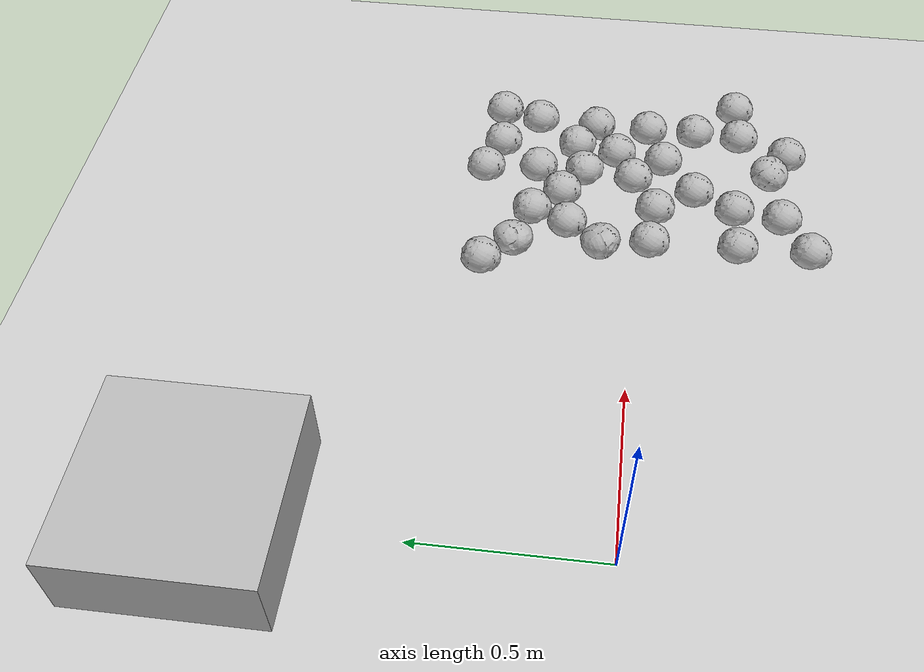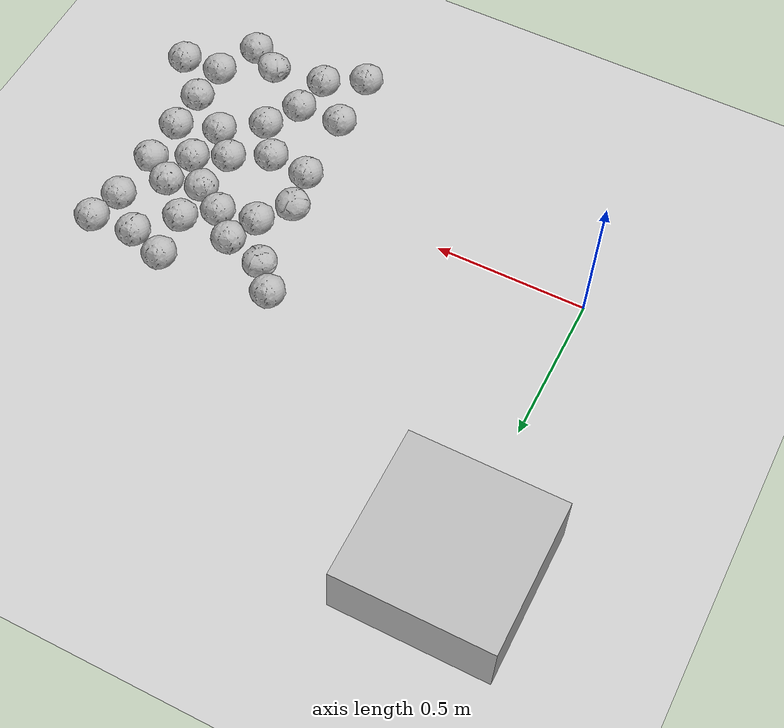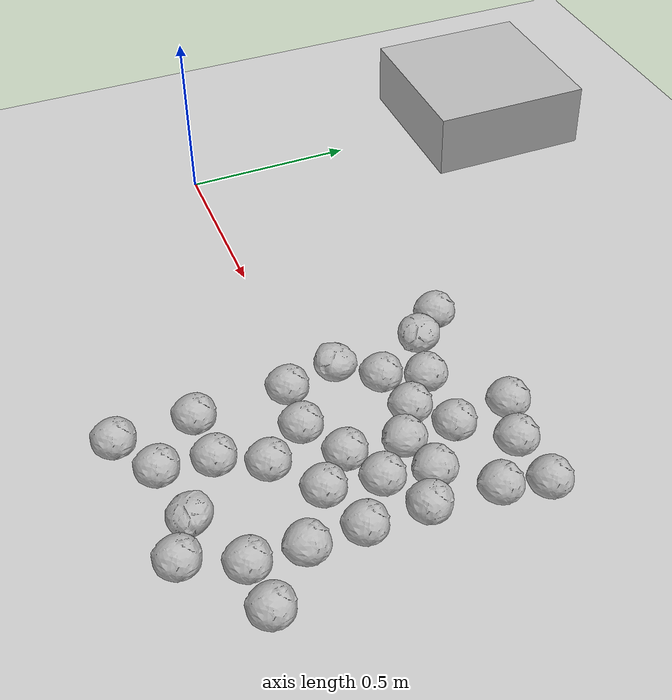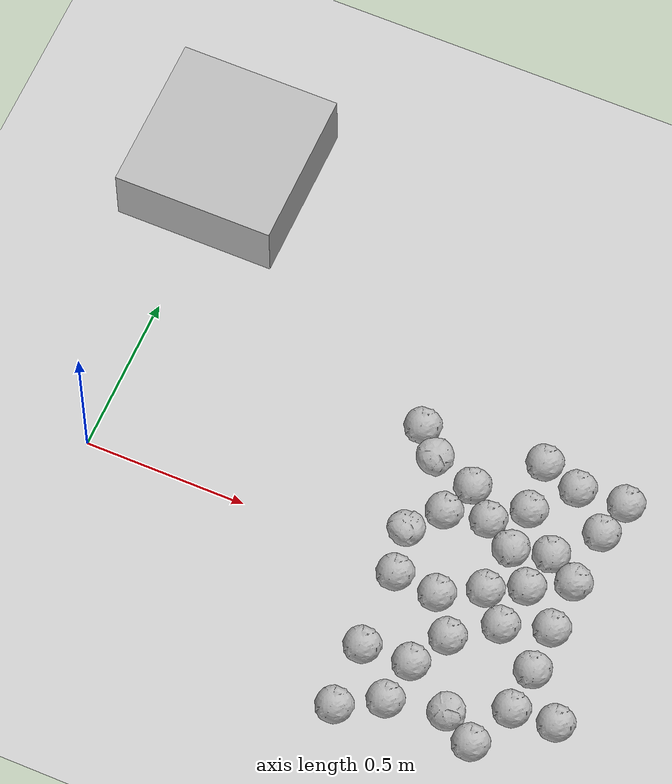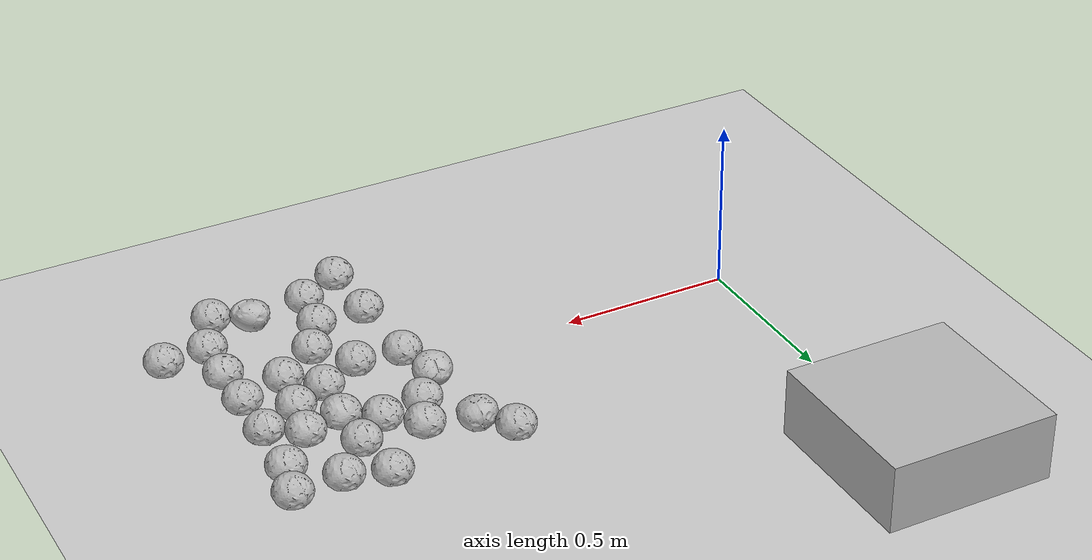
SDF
<sdf version="1.6">
 <world name="default">
  <model name="ground_plane">
   <static>1</static>
   <link name="link">
    <collision name="collision">
     <geometry><plane><normal>0 0 1</normal><size>100 100</size></plane></geometry>
     <surface>
      <contact><collide_bitmask>65535</collide_bitmask></contact>
      <friction><ode><mu>100</mu><mu2>50</mu2></ode></friction>
     </surface>
    </collision>
    <visual name="visual">
     <cast_shadows>0</cast_shadows>
     <geometry><plane><normal>0 0 1</normal><size>100 100</size></plane></geometry>
     <material>
      <script><uri>file://media/materials/scripts/gazebo.material</uri><name>Gazebo/Grey</name></script>
     </material>
    </visual>
   </link>
  </model>
  <light name="sun" type="directional">
   <pose>0 0 10 0 -0 0</pose>
   <diffuse>0.8 0.8 0.8 1</diffuse>
   <specular>0.2 0.2 0.2 1</specular>
   <attenuation>
    <range>1000</range>
    <constant>0.9</constant>
    <linear>0.01</linear>
    <quadratic>0.001</quadratic>
   </attenuation>
   <direction>-0.5 0.1 -0.9</direction>
  </light>
  <model name="mytable">
   <link name="link">
    <inertial>
     <mass>1</mass>
     <inertia><ixx>0.083</ixx><ixy>0</ixy><ixz>0</ixz><iyy>0.083</iyy><iyz>0</iyz><izz>0.083</izz></inertia>
    </inertial>
    <collision name="collision"><geometry><box><size>0.5 0.5 0.2</size></box></geometry></collision>
    <visual name="visual"><geometry><box><size>0.5 0.5 0.2</size></box></geometry></visual>
   </link>
   <pose>0 1 0.1 0 -0 0</pose>
  </model>
  <gravity>0 0 -9.8</gravity>
  <magnetic_field>6e-06 2.3e-05 -4.2e-05</magnetic_field>
  <atmosphere type="adiabatic"/>
  <physics name="default_physics" default="0" type="ode">
   <max_step_size>0.001</max_step_size>
   <real_time_factor>1</real_time_factor>
   <real_time_update_rate>1000</real_time_update_rate>
  </physics>
  <scene><ambient>0.4 0.4 0.4 1</ambient><background>0.7 0.7 0.7 1</background><shadows>1</shadows></scene>
  <audio><device>default</device></audio>
  <spherical_coordinates>
   <surface_model>EARTH_WGS84</surface_model>
   <latitude_deg>0</latitude_deg>
   <longitude_deg>0</longitude_deg>
   <elevation>0</elevation>
   <heading_deg>0</heading_deg>
  </spherical_coordinates>
  <model name="cabbage_clone_0">
   <link name="link">
    <inertial>
     <mass>1.5</mass>
     <inertia>
      <ixx>0.0017004</ixx>
      <ixy>0</ixy>
      <ixz>0</ixz>
      <iyy>0.0019839</iyy>
      <iyz>0</iyz>
      <izz>0.0016659</izz>
     </inertia>
    </inertial>
    <collision name="collision">
     <geometry>
      <mesh><scale>0.001 0.001 0.001</scale><uri>model://cabbage/cabbage_single.dae</uri></mesh>
     </geometry>
     <surface>
      <friction><ode><mu>0.6</mu><mu2>0.6</mu2></ode></friction>
      <contact><ode><max_vel>0.1</max_vel><min_depth>0.0001</min_depth></ode></contact>
     </surface>
    </collision>
    <visual name="visual">
     <geometry>
      <mesh><scale>0.001 0.001 0.001</scale><uri>model://cabbage/cabbage_single.dae</uri></mesh>
     </geometry>
     <material><script><uri>model://cabbage/texture.material</uri><name>CabbageTexture</name></script></material>
    </visual>
   </link>
   <pose>1.52906 0.426175 0.051369 1.56997 0.009095 0.300624</pose>
  </model>
  <model name="cabbage_clone_1">
   <link name="link">
    <inertial>
     <mass>1.5</mass>
     <inertia>
      <ixx>0.0017004</ixx>
      <ixy>0</ixy>
      <ixz>0</ixz>
      <iyy>0.0019839</iyy>
      <iyz>0</iyz>
      <izz>0.0016659</izz>
     </inertia>
    </inertial>
    <collision name="collision">
     <geometry>
      <mesh><scale>0.001 0.001 0.001</scale><uri>model://cabbage/cabbage_single.dae</uri></mesh>
     </geometry>
     <surface>
      <friction><ode><mu>0.6</mu><mu2>0.6</mu2></ode></friction>
      <contact><ode><max_vel>0.1</max_vel><min_depth>0.0001</min_depth></ode></contact>
     </surface>
    </collision>
    <visual name="visual">
     <geometry>
      <mesh><scale>0.001 0.001 0.001</scale><uri>model://cabbage/cabbage_single.dae</uri></mesh>
     </geometry>
     <material><script><uri>model://cabbage/texture.material</uri><name>CabbageTexture</name></script></material>
    </visual>
   </link>
   <pose>1.49953 0.310142 0.051509 1.57619 0.008676 0.500936</pose>
  </model>
  <model name="cabbage_clone_2">
   <link name="link">
    <inertial>
     <mass>1.5</mass>
     <inertia>
      <ixx>0.0017004</ixx>
      <ixy>0</ixy>
      <ixz>0</ixz>
      <iyy>0.0019839</iyy>
      <iyz>0</iyz>
      <izz>0.0016659</izz>
     </inertia>
    </inertial>
    <collision name="collision">
     <geometry>
      <mesh><scale>0.001 0.001 0.001</scale><uri>model://cabbage/cabbage_single.dae</uri></mesh>
     </geometry>
     <surface>
      <friction><ode><mu>0.6</mu><mu2>0.6</mu2></ode></friction>
      <contact><ode><max_vel>0.1</max_vel><min_depth>0.0001</min_depth></ode></contact>
     </surface>
    </collision>
    <visual name="visual">
     <geometry>
      <mesh><scale>0.001 0.001 0.001</scale><uri>model://cabbage/cabbage_single.dae</uri></mesh>
     </geometry>
     <material><script><uri>model://cabbage/texture.material</uri><name>CabbageTexture</name></script></material>
    </visual>
   </link>
   <pose>1.39185 0.188371 0.051477 1.57111 0.008937 0.738338</pose>
  </model>
  <model name="cabbage_clone_3">
   <link name="link">
    <inertial>
     <mass>1.5</mass>
     <inertia>
      <ixx>0.0017004</ixx>
      <ixy>0</ixy>
      <ixz>0</ixz>
      <iyy>0.0019839</iyy>
      <iyz>0</iyz>
      <izz>0.0016659</izz>
     </inertia>
    </inertial>
    <collision name="collision">
     <geometry>
      <mesh><scale>0.001 0.001 0.001</scale><uri>model://cabbage/cabbage_single.dae</uri></mesh>
     </geometry>
     <surface>
      <friction><ode><mu>0.6</mu><mu2>0.6</mu2></ode></friction>
      <contact><ode><max_vel>0.1</max_vel><min_depth>0.0001</min_depth></ode></contact>
     </surface>
    </collision>
    <visual name="visual">
     <geometry>
      <mesh><scale>0.001 0.001 0.001</scale><uri>model://cabbage/cabbage_single.dae</uri></mesh>
     </geometry>
     <material><script><uri>model://cabbage/texture.material</uri><name>CabbageTexture</name></script></material>
    </visual>
   </link>
   <pose>1.38152 0.415773 0.051505 1.57645 0.00897 0.393363</pose>
  </model>
  <model name="cabbage_clone_4">
   <link name="link">
    <inertial>
     <mass>1.5</mass>
     <inertia>
      <ixx>0.0017004</ixx>
      <ixy>0</ixy>
      <ixz>0</ixz>
      <iyy>0.0019839</iyy>
      <iyz>0</iyz>
      <izz>0.0016659</izz>
     </inertia>
    </inertial>
    <collision name="collision">
     <geometry>
      <mesh><scale>0.001 0.001 0.001</scale><uri>model://cabbage/cabbage_single.dae</uri></mesh>
     </geometry>
     <surface>
      <friction><ode><mu>0.6</mu><mu2>0.6</mu2></ode></friction>
      <contact><ode><max_vel>0.1</max_vel><min_depth>0.0001</min_depth></ode></contact>
     </surface>
    </collision>
    <visual name="visual">
     <geometry>
      <mesh><scale>0.001 0.001 0.001</scale><uri>model://cabbage/cabbage_single.dae</uri></mesh>
     </geometry>
     <material><script><uri>model://cabbage/texture.material</uri><name>CabbageTexture</name></script></material>
    </visual>
   </link>
   <pose>1.27798 0.297073 0.051504 1.57641 0.009149 0.10849</pose>
  </model>
  <model name="cabbage_clone_5">
   <link name="link">
    <inertial>
     <mass>1.5</mass>
     <inertia>
      <ixx>0.0017004</ixx>
      <ixy>0</ixy>
      <ixz>0</ixz>
      <iyy>0.0019839</iyy>
      <iyz>0</iyz>
      <izz>0.0016659</izz>
     </inertia>
    </inertial>
    <collision name="collision">
     <geometry>
      <mesh><scale>0.001 0.001 0.001</scale><uri>model://cabbage/cabbage_single.dae</uri></mesh>
     </geometry>
     <surface>
      <friction><ode><mu>0.6</mu><mu2>0.6</mu2></ode></friction>
      <contact><ode><max_vel>0.1</max_vel><min_depth>0.0001</min_depth></ode></contact>
     </surface>
    </collision>
    <visual name="visual">
     <geometry>
      <mesh><scale>0.001 0.001 0.001</scale><uri>model://cabbage/cabbage_single.dae</uri></mesh>
     </geometry>
     <material><script><uri>model://cabbage/texture.material</uri><name>CabbageTexture</name></script></material>
    </visual>
   </link>
   <pose>1.48673 0.131062 0.052192 1.65283 0.033009 -0.024377</pose>
  </model>
  <model name="cabbage_clone_9">
   <link name="link">
    <inertial>
     <mass>1.5</mass>
     <inertia>
      <ixx>0.0017004</ixx>
      <ixy>0</ixy>
      <ixz>0</ixz>
      <iyy>0.0019839</iyy>
      <iyz>0</iyz>
      <izz>0.0016659</izz>
     </inertia>
    </inertial>
    <collision name="collision">
     <geometry>
      <mesh><scale>0.001 0.001 0.001</scale><uri>model://cabbage/cabbage_single.dae</uri></mesh>
     </geometry>
     <surface>
      <friction><ode><mu>0.6</mu><mu2>0.6</mu2></ode></friction>
      <contact><ode><max_vel>0.1</max_vel><min_depth>0.0001</min_depth></ode></contact>
     </surface>
    </collision>
    <visual name="visual">
     <geometry>
      <mesh><scale>0.001 0.001 0.001</scale><uri>model://cabbage/cabbage_single.dae</uri></mesh>
     </geometry>
     <material><script><uri>model://cabbage/texture.material</uri><name>CabbageTexture</name></script></material>
    </visual>
   </link>
   <pose>1.26155 0.455644 0.051426 1.57583 0.009768 0.402373</pose>
  </model>
  <model name="cabbage_clone_10">
   <link name="link">
    <inertial>
     <mass>1.5</mass>
     <inertia>
      <ixx>0.0017004</ixx>
      <ixy>0</ixy>
      <ixz>0</ixz>
      <iyy>0.0019839</iyy>
      <iyz>0</iyz>
      <izz>0.0016659</izz>
     </inertia>
    </inertial>
    <collision name="collision">
     <geometry>
      <mesh><scale>0.001 0.001 0.001</scale><uri>model://cabbage/cabbage_single.dae</uri></mesh>
     </geometry>
     <surface>
      <friction><ode><mu>0.6</mu><mu2>0.6</mu2></ode></friction>
      <contact><ode><max_vel>0.1</max_vel><min_depth>0.0001</min_depth></ode></contact>
     </surface>
    </collision>
    <visual name="visual">
     <geometry>
      <mesh><scale>0.001 0.001 0.001</scale><uri>model://cabbage/cabbage_single.dae</uri></mesh>
     </geometry>
     <material><script><uri>model://cabbage/texture.material</uri><name>CabbageTexture</name></script></material>
    </visual>
   </link>
   <pose>1.2775 0.159652 0.051506 1.57644 0.008848 0.888407</pose>
  </model>
  <model name="cabbage_clone_12">
   <link name="link">
    <inertial>
     <mass>1.5</mass>
     <inertia>
      <ixx>0.0017004</ixx>
      <ixy>0</ixy>
      <ixz>0</ixz>
      <iyy>0.0019839</iyy>
      <iyz>0</iyz>
      <izz>0.0016659</izz>
     </inertia>
    </inertial>
    <collision name="collision">
     <geometry>
      <mesh><scale>0.001 0.001 0.001</scale><uri>model://cabbage/cabbage_single.dae</uri></mesh>
     </geometry>
     <surface>
      <friction><ode><mu>0.6</mu><mu2>0.6</mu2></ode></friction>
      <contact><ode><max_vel>0.1</max_vel><min_depth>0.0001</min_depth></ode></contact>
     </surface>
    </collision>
    <visual name="visual">
     <geometry>
      <mesh><scale>0.001 0.001 0.001</scale><uri>model://cabbage/cabbage_single.dae</uri></mesh>
     </geometry>
     <material><script><uri>model://cabbage/texture.material</uri><name>CabbageTexture</name></script></material>
    </visual>
   </link>
   <pose>1.182 0.219756 0.051506 1.57638 0.00894 0.41807</pose>
  </model>
  <model name="cabbage_clone_17">
   <link name="link">
    <inertial>
     <mass>1.5</mass>
     <inertia>
      <ixx>0.0017004</ixx>
      <ixy>0</ixy>
      <ixz>0</ixz>
      <iyy>0.0019839</iyy>
      <iyz>0</iyz>
      <izz>0.0016659</izz>
     </inertia>
    </inertial>
    <collision name="collision">
     <geometry>
      <mesh><scale>0.001 0.001 0.001</scale><uri>model://cabbage/cabbage_single.dae</uri></mesh>
     </geometry>
     <surface>
      <friction><ode><mu>0.6</mu><mu2>0.6</mu2></ode></friction>
      <contact><ode><max_vel>0.1</max_vel><min_depth>0.0001</min_depth></ode></contact>
     </surface>
    </collision>
    <visual name="visual">
     <geometry>
      <mesh><scale>0.001 0.001 0.001</scale><uri>model://cabbage/cabbage_single.dae</uri></mesh>
     </geometry>
     <material><script><uri>model://cabbage/texture.material</uri><name>CabbageTexture</name></script></material>
    </visual>
   </link>
   <pose>0.960821 0.343211 0.048846 -1.60286 -0.155047 2.96333</pose>
  </model>
  <model name="cabbage_clone_18">
   <link name="link">
    <inertial>
     <mass>1.5</mass>
     <inertia>
      <ixx>0.0017004</ixx>
      <ixy>0</ixy>
      <ixz>0</ixz>
      <iyy>0.0019839</iyy>
      <iyz>0</iyz>
      <izz>0.0016659</izz>
     </inertia>
    </inertial>
    <collision name="collision">
     <geometry>
      <mesh><scale>0.001 0.001 0.001</scale><uri>model://cabbage/cabbage_single.dae</uri></mesh>
     </geometry>
     <surface>
      <friction><ode><mu>0.6</mu><mu2>0.6</mu2></ode></friction>
      <contact><ode><max_vel>0.1</max_vel><min_depth>0.0001</min_depth></ode></contact>
     </surface>
    </collision>
    <visual name="visual">
     <geometry>
      <mesh><scale>0.001 0.001 0.001</scale><uri>model://cabbage/cabbage_single.dae</uri></mesh>
     </geometry>
     <material><script><uri>model://cabbage/texture.material</uri><name>CabbageTexture</name></script></material>
    </visual>
   </link>
   <pose>1.05359 0.194936 0.051506 1.57644 0.009028 0.207035</pose>
  </model>
  <model name="cabbage_clone_19">
   <link name="link">
    <inertial>
     <mass>1.5</mass>
     <inertia>
      <ixx>0.0017004</ixx>
      <ixy>0</ixy>
      <ixz>0</ixz>
      <iyy>0.0019839</iyy>
      <iyz>0</iyz>
      <izz>0.0016659</izz>
     </inertia>
    </inertial>
    <collision name="collision">
     <geometry>
      <mesh><scale>0.001 0.001 0.001</scale><uri>model://cabbage/cabbage_single.dae</uri></mesh>
     </geometry>
     <surface>
      <friction><ode><mu>0.6</mu><mu2>0.6</mu2></ode></friction>
      <contact><ode><max_vel>0.1</max_vel><min_depth>0.0001</min_depth></ode></contact>
     </surface>
    </collision>
    <visual name="visual">
     <geometry>
      <mesh><scale>0.001 0.001 0.001</scale><uri>model://cabbage/cabbage_single.dae</uri></mesh>
     </geometry>
     <material><script><uri>model://cabbage/texture.material</uri><name>CabbageTexture</name></script></material>
    </visual>
   </link>
   <pose>1.09699 0.302024 0.051506 1.57637 0.008853 0.673599</pose>
  </model>
  <model name="cabbage_clone_22">
   <link name="link">
    <inertial>
     <mass>1.5</mass>
     <inertia>
      <ixx>0.0017004</ixx>
      <ixy>0</ixy>
      <ixz>0</ixz>
      <iyy>0.0019839</iyy>
      <iyz>0</iyz>
      <izz>0.0016659</izz>
     </inertia>
    </inertial>
    <collision name="collision">
     <geometry>
      <mesh><scale>0.001 0.001 0.001</scale><uri>model://cabbage/cabbage_single.dae</uri></mesh>
     </geometry>
     <surface>
      <friction><ode><mu>0.6</mu><mu2>0.6</mu2></ode></friction>
      <contact><ode><max_vel>0.1</max_vel><min_depth>0.0001</min_depth></ode></contact>
     </surface>
    </collision>
    <visual name="visual">
     <geometry>
      <mesh><scale>0.001 0.001 0.001</scale><uri>model://cabbage/cabbage_single.dae</uri></mesh>
     </geometry>
     <material><script><uri>model://cabbage/texture.material</uri><name>CabbageTexture</name></script></material>
    </visual>
   </link>
   <pose>0.886873 0.426021 0.051502 1.57671 0.009114 0.391091</pose>
  </model>
  <model name="cabbage_clone_25">
   <link name="link">
    <inertial>
     <mass>1.5</mass>
     <inertia>
      <ixx>0.0017004</ixx>
      <ixy>0</ixy>
      <ixz>0</ixz>
      <iyy>0.0019839</iyy>
      <iyz>0</iyz>
      <izz>0.0016659</izz>
     </inertia>
    </inertial>
    <collision name="collision">
     <geometry>
      <mesh><scale>0.001 0.001 0.001</scale><uri>model://cabbage/cabbage_single.dae</uri></mesh>
     </geometry>
     <surface>
      <friction><ode><mu>0.6</mu><mu2>0.6</mu2></ode></friction>
      <contact><ode><max_vel>0.1</max_vel><min_depth>0.0001</min_depth></ode></contact>
     </surface>
    </collision>
    <visual name="visual">
     <geometry>
      <mesh><scale>0.001 0.001 0.001</scale><uri>model://cabbage/cabbage_single.dae</uri></mesh>
     </geometry>
     <material><script><uri>model://cabbage/texture.material</uri><name>CabbageTexture</name></script></material>
    </visual>
   </link>
   <pose>0.975558 0.093724 0.048852 -1.66256 -0.171648 -1.20441</pose>
  </model>
  <model name="cabbage_clone_30">
   <link name="link">
    <inertial>
     <mass>1.5</mass>
     <inertia>
      <ixx>0.0017004</ixx>
      <ixy>0</ixy>
      <ixz>0</ixz>
      <iyy>0.0019839</iyy>
      <iyz>0</iyz>
      <izz>0.0016659</izz>
     </inertia>
    </inertial>
    <collision name="collision">
     <geometry>
      <mesh><scale>0.001 0.001 0.001</scale><uri>model://cabbage/cabbage_single.dae</uri></mesh>
     </geometry>
     <surface>
      <friction><ode><mu>0.6</mu><mu2>0.6</mu2></ode></friction>
      <contact><ode><max_vel>0.1</max_vel><min_depth>0.0001</min_depth></ode></contact>
     </surface>
    </collision>
    <visual name="visual">
     <geometry>
      <mesh><scale>0.001 0.001 0.001</scale><uri>model://cabbage/cabbage_single.dae</uri></mesh>
     </geometry>
     <material><script><uri>model://cabbage/texture.material</uri><name>CabbageTexture</name></script></material>
    </visual>
   </link>
   <pose>1.3678 0.06463 0.051502 1.57672 0.009115 0.391083</pose>
  </model>
  <model name="cabbage_clone_20_clone_1">
   <link name="link">
    <inertial>
     <mass>1.5</mass>
     <inertia>
      <ixx>0.0017004</ixx>
      <ixy>0</ixy>
      <ixz>0</ixz>
      <iyy>0.0019839</iyy>
      <iyz>0</iyz>
      <izz>0.0016659</izz>
     </inertia>
    </inertial>
    <collision name="collision">
     <geometry>
      <mesh><scale>0.001 0.001 0.001</scale><uri>model://cabbage/cabbage_single.dae</uri></mesh>
     </geometry>
     <surface>
      <friction><ode><mu>0.6</mu><mu2>0.6</mu2></ode></friction>
      <contact><ode><max_vel>0.1</max_vel><min_depth>0.0001</min_depth></ode></contact>
     </surface>
    </collision>
    <visual name="visual">
     <geometry>
      <mesh><scale>0.001 0.001 0.001</scale><uri>model://cabbage/cabbage_single.dae</uri></mesh>
     </geometry>
     <material><script><uri>model://cabbage/texture.material</uri><name>CabbageTexture</name></script></material>
    </visual>
   </link>
   <pose>1.48412 -0.028785 0.051506 1.57641 0.008925 0.300924</pose>
  </model>
  <model name="cabbage_clone_20_clone_2">
   <link name="link">
    <inertial>
     <mass>1.5</mass>
     <inertia>
      <ixx>0.0017004</ixx>
      <ixy>0</ixy>
      <ixz>0</ixz>
      <iyy>0.0019839</iyy>
      <iyz>0</iyz>
      <izz>0.0016659</izz>
     </inertia>
    </inertial>
    <collision name="collision">
     <geometry>
      <mesh><scale>0.001 0.001 0.001</scale><uri>model://cabbage/cabbage_single.dae</uri></mesh>
     </geometry>
     <surface>
      <friction><ode><mu>0.6</mu><mu2>0.6</mu2></ode></friction>
      <contact><ode><max_vel>0.1</max_vel><min_depth>0.0001</min_depth></ode></contact>
     </surface>
    </collision>
    <visual name="visual">
     <geometry>
      <mesh><scale>0.001 0.001 0.001</scale><uri>model://cabbage/cabbage_single.dae</uri></mesh>
     </geometry>
     <material><script><uri>model://cabbage/texture.material</uri><name>CabbageTexture</name></script></material>
    </visual>
   </link>
   <pose>1.34584 -0.076715 0.051506 1.5764 0.008922 0.300955</pose>
  </model>
  <model name="cabbage_clone_20_clone_3">
   <link name="link">
    <inertial>
     <mass>1.5</mass>
     <inertia>
      <ixx>0.0017004</ixx>
      <ixy>0</ixy>
      <ixz>0</ixz>
      <iyy>0.0019839</iyy>
      <iyz>0</iyz>
      <izz>0.0016659</izz>
     </inertia>
    </inertial>
    <collision name="collision">
     <geometry>
      <mesh><scale>0.001 0.001 0.001</scale><uri>model://cabbage/cabbage_single.dae</uri></mesh>
     </geometry>
     <surface>
      <friction><ode><mu>0.6</mu><mu2>0.6</mu2></ode></friction>
      <contact><ode><max_vel>0.1</max_vel><min_depth>0.0001</min_depth></ode></contact>
     </surface>
    </collision>
    <visual name="visual">
     <geometry>
      <mesh><scale>0.001 0.001 0.001</scale><uri>model://cabbage/cabbage_single.dae</uri></mesh>
     </geometry>
     <material><script><uri>model://cabbage/texture.material</uri><name>CabbageTexture</name></script></material>
    </visual>
   </link>
   <pose>1.26167 0.011061 0.051507 1.57624 0.00892 0.261036</pose>
  </model>
  <model name="cabbage_clone_20_clone_4">
   <link name="link">
    <inertial>
     <mass>1.5</mass>
     <inertia>
      <ixx>0.0017004</ixx>
      <ixy>0</ixy>
      <ixz>0</ixz>
      <iyy>0.0019839</iyy>
      <iyz>0</iyz>
      <izz>0.0016659</izz>
     </inertia>
    </inertial>
    <collision name="collision">
     <geometry>
      <mesh><scale>0.001 0.001 0.001</scale><uri>model://cabbage/cabbage_single.dae</uri></mesh>
     </geometry>
     <surface>
      <friction><ode><mu>0.6</mu><mu2>0.6</mu2></ode></friction>
      <contact><ode><max_vel>0.1</max_vel><min_depth>0.0001</min_depth></ode></contact>
     </surface>
    </collision>
    <visual name="visual">
     <geometry>
      <mesh><scale>0.001 0.001 0.001</scale><uri>model://cabbage/cabbage_single.dae</uri></mesh>
     </geometry>
     <material><script><uri>model://cabbage/texture.material</uri><name>CabbageTexture</name></script></material>
    </visual>
   </link>
   <pose>1.13821 -0.05695 0.051507 1.57639 0.008916 0.30102</pose>
  </model>
  <model name="cabbage_clone_20_clone_5">
   <link name="link">
    <inertial>
     <mass>1.5</mass>
     <inertia>
      <ixx>0.0017004</ixx>
      <ixy>0</ixy>
      <ixz>0</ixz>
      <iyy>0.0019839</iyy>
      <iyz>0</iyz>
      <izz>0.0016659</izz>
     </inertia>
    </inertial>
    <collision name="collision">
     <geometry>
      <mesh><scale>0.001 0.001 0.001</scale><uri>model://cabbage/cabbage_single.dae</uri></mesh>
     </geometry>
     <surface>
      <friction><ode><mu>0.6</mu><mu2>0.6</mu2></ode></friction>
      <contact><ode><max_vel>0.1</max_vel><min_depth>0.0001</min_depth></ode></contact>
     </surface>
    </collision>
    <visual name="visual">
     <geometry>
      <mesh><scale>0.001 0.001 0.001</scale><uri>model://cabbage/cabbage_single.dae</uri></mesh>
     </geometry>
     <material><script><uri>model://cabbage/texture.material</uri><name>CabbageTexture</name></script></material>
    </visual>
   </link>
   <pose>1.00216 -0.044194 0.051507 1.57639 0.008914 0.301046</pose>
  </model>
  <model name="cabbage_clone_20_clone_7">
   <link name="link">
    <inertial>
     <mass>1.5</mass>
     <inertia>
      <ixx>0.0017004</ixx>
      <ixy>0</ixy>
      <ixz>0</ixz>
      <iyy>0.0019839</iyy>
      <iyz>0</iyz>
      <izz>0.0016659</izz>
     </inertia>
    </inertial>
    <collision name="collision">
     <geometry>
      <mesh><scale>0.001 0.001 0.001</scale><uri>model://cabbage/cabbage_single.dae</uri></mesh>
     </geometry>
     <surface>
      <friction><ode><mu>0.6</mu><mu2>0.6</mu2></ode></friction>
      <contact><ode><max_vel>0.1</max_vel><min_depth>0.0001</min_depth></ode></contact>
     </surface>
    </collision>
    <visual name="visual">
     <geometry>
      <mesh><scale>0.001 0.001 0.001</scale><uri>model://cabbage/cabbage_single.dae</uri></mesh>
     </geometry>
     <material><script><uri>model://cabbage/texture.material</uri><name>CabbageTexture</name></script></material>
    </visual>
   </link>
   <pose>1.48431 -0.171538 0.051506 1.57526 0.008764 0.68728</pose>
  </model>
  <model name="cabbage_clone_20_clone_8">
   <link name="link">
    <inertial>
     <mass>1.5</mass>
     <inertia>
      <ixx>0.0017004</ixx>
      <ixy>0</ixy>
      <ixz>0</ixz>
      <iyy>0.0019839</iyy>
      <iyz>0</iyz>
      <izz>0.0016659</izz>
     </inertia>
    </inertial>
    <collision name="collision">
     <geometry>
      <mesh><scale>0.001 0.001 0.001</scale><uri>model://cabbage/cabbage_single.dae</uri></mesh>
     </geometry>
     <surface>
      <friction><ode><mu>0.6</mu><mu2>0.6</mu2></ode></friction>
      <contact><ode><max_vel>0.1</max_vel><min_depth>0.0001</min_depth></ode></contact>
     </surface>
    </collision>
    <visual name="visual">
     <geometry>
      <mesh><scale>0.001 0.001 0.001</scale><uri>model://cabbage/cabbage_single.dae</uri></mesh>
     </geometry>
     <material><script><uri>model://cabbage/texture.material</uri><name>CabbageTexture</name></script></material>
    </visual>
   </link>
   <pose>1.60919 -0.298785 0.051506 1.57642 0.008937 0.300798</pose>
  </model>
  <model name="cabbage_clone_20_clone_9">
   <link name="link">
    <inertial>
     <mass>1.5</mass>
     <inertia>
      <ixx>0.0017004</ixx>
      <ixy>0</ixy>
      <ixz>0</ixz>
      <iyy>0.0019839</iyy>
      <iyz>0</iyz>
      <izz>0.0016659</izz>
     </inertia>
    </inertial>
    <collision name="collision">
     <geometry>
      <mesh><scale>0.001 0.001 0.001</scale><uri>model://cabbage/cabbage_single.dae</uri></mesh>
     </geometry>
     <surface>
      <friction><ode><mu>0.6</mu><mu2>0.6</mu2></ode></friction>
      <contact><ode><max_vel>0.1</max_vel><min_depth>0.0001</min_depth></ode></contact>
     </surface>
    </collision>
    <visual name="visual">
     <geometry>
      <mesh><scale>0.001 0.001 0.001</scale><uri>model://cabbage/cabbage_single.dae</uri></mesh>
     </geometry>
     <material><script><uri>model://cabbage/texture.material</uri><name>CabbageTexture</name></script></material>
    </visual>
   </link>
   <pose>1.47673 -0.308353 0.051505 1.57622 0.009257 0.331525</pose>
  </model>
  <model name="cabbage_clone_20_clone_12">
   <link name="link">
    <inertial>
     <mass>1.5</mass>
     <inertia>
      <ixx>0.0017004</ixx>
      <ixy>0</ixy>
      <ixz>0</ixz>
      <iyy>0.0019839</iyy>
      <iyz>0</iyz>
      <izz>0.0016659</izz>
     </inertia>
    </inertial>
    <collision name="collision">
     <geometry>
      <mesh><scale>0.001 0.001 0.001</scale><uri>model://cabbage/cabbage_single.dae</uri></mesh>
     </geometry>
     <surface>
      <friction><ode><mu>0.6</mu><mu2>0.6</mu2></ode></friction>
      <contact><ode><max_vel>0.1</max_vel><min_depth>0.0001</min_depth></ode></contact>
     </surface>
    </collision>
    <visual name="visual">
     <geometry>
      <mesh><scale>0.001 0.001 0.001</scale><uri>model://cabbage/cabbage_single.dae</uri></mesh>
     </geometry>
     <material><script><uri>model://cabbage/texture.material</uri><name>CabbageTexture</name></script></material>
    </visual>
   </link>
   <pose>1.15643 -0.287255 0.051506 1.57642 0.008936 0.300799</pose>
  </model>
  <model name="cabbage_clone_20_clone_13">
   <link name="link">
    <inertial>
     <mass>1.5</mass>
     <inertia>
      <ixx>0.0017004</ixx>
      <ixy>0</ixy>
      <ixz>0</ixz>
      <iyy>0.0019839</iyy>
      <iyz>0</iyz>
      <izz>0.0016659</izz>
     </inertia>
    </inertial>
    <collision name="collision">
     <geometry>
      <mesh><scale>0.001 0.001 0.001</scale><uri>model://cabbage/cabbage_single.dae</uri></mesh>
     </geometry>
     <surface>
      <friction><ode><mu>0.6</mu><mu2>0.6</mu2></ode></friction>
      <contact><ode><max_vel>0.1</max_vel><min_depth>0.0001</min_depth></ode></contact>
     </surface>
    </collision>
    <visual name="visual">
     <geometry>
      <mesh><scale>0.001 0.001 0.001</scale><uri>model://cabbage/cabbage_single.dae</uri></mesh>
     </geometry>
     <material><script><uri>model://cabbage/texture.material</uri><name>CabbageTexture</name></script></material>
    </visual>
   </link>
   <pose>1.00767 -0.293448 0.051506 1.57641 0.008936 0.3008</pose>
  </model>
  <model name="cabbage_clone_20_clone_16">
   <link name="link">
    <inertial>
     <mass>1.5</mass>
     <inertia>
      <ixx>0.0017004</ixx>
      <ixy>0</ixy>
      <ixz>0</ixz>
      <iyy>0.0019839</iyy>
      <iyz>0</iyz>
      <izz>0.0016659</izz>
     </inertia>
    </inertial>
    <collision name="collision">
     <geometry>
      <mesh><scale>0.001 0.001 0.001</scale><uri>model://cabbage/cabbage_single.dae</uri></mesh>
     </geometry>
     <surface>
      <friction><ode><mu>0.6</mu><mu2>0.6</mu2></ode></friction>
      <contact><ode><max_vel>0.1</max_vel><min_depth>0.0001</min_depth></ode></contact>
     </surface>
    </collision>
    <visual name="visual">
     <geometry>
      <mesh><scale>0.001 0.001 0.001</scale><uri>model://cabbage/cabbage_single.dae</uri></mesh>
     </geometry>
     <material><script><uri>model://cabbage/texture.material</uri><name>CabbageTexture</name></script></material>
    </visual>
   </link>
   <pose>1.01006 -0.497863 0.051444 1.56785 0.009337 0.300725</pose>
  </model>
  <model name="cabbage_clone_20_clone_17">
   <link name="link">
    <inertial>
     <mass>1.5</mass>
     <inertia>
      <ixx>0.0017004</ixx>
      <ixy>0</ixy>
      <ixz>0</ixz>
      <iyy>0.0019839</iyy>
      <iyz>0</iyz>
      <izz>0.0016659</izz>
     </inertia>
    </inertial>
    <collision name="collision">
     <geometry>
      <mesh><scale>0.001 0.001 0.001</scale><uri>model://cabbage/cabbage_single.dae</uri></mesh>
     </geometry>
     <surface>
      <friction><ode><mu>0.6</mu><mu2>0.6</mu2></ode></friction>
      <contact><ode><max_vel>0.1</max_vel><min_depth>0.0001</min_depth></ode></contact>
     </surface>
    </collision>
    <visual name="visual">
     <geometry>
      <mesh><scale>0.001 0.001 0.001</scale><uri>model://cabbage/cabbage_single.dae</uri></mesh>
     </geometry>
     <material><script><uri>model://cabbage/texture.material</uri><name>CabbageTexture</name></script></material>
    </visual>
   </link>
   <pose>1.22054 -0.170754 0.051506 1.57642 0.008935 0.30081</pose>
  </model>
  <model name="cabbage_clone_20_clone_18">
   <link name="link">
    <inertial>
     <mass>1.5</mass>
     <inertia>
      <ixx>0.0017004</ixx>
      <ixy>0</ixy>
      <ixz>0</ixz>
      <iyy>0.0019839</iyy>
      <iyz>0</iyz>
      <izz>0.0016659</izz>
     </inertia>
    </inertial>
    <collision name="collision">
     <geometry>
      <mesh><scale>0.001 0.001 0.001</scale><uri>model://cabbage/cabbage_single.dae</uri></mesh>
     </geometry>
     <surface>
      <friction><ode><mu>0.6</mu><mu2>0.6</mu2></ode></friction>
      <contact><ode><max_vel>0.1</max_vel><min_depth>0.0001</min_depth></ode></contact>
     </surface>
    </collision>
    <visual name="visual">
     <geometry>
      <mesh><scale>0.001 0.001 0.001</scale><uri>model://cabbage/cabbage_single.dae</uri></mesh>
     </geometry>
     <material><script><uri>model://cabbage/texture.material</uri><name>CabbageTexture</name></script></material>
    </visual>
   </link>
   <pose>1.13617 -0.423282 0.051443 1.56787 0.009326 0.300722</pose>
  </model>
  <model name="cabbage_clone_20_clone_19">
   <link name="link">
    <inertial>
     <mass>1.5</mass>
     <inertia>
      <ixx>0.0017004</ixx>
      <ixy>0</ixy>
      <ixz>0</ixz>
      <iyy>0.0019839</iyy>
      <iyz>0</iyz>
      <izz>0.0016659</izz>
     </inertia>
    </inertial>
    <collision name="collision">
     <geometry>
      <mesh><scale>0.001 0.001 0.001</scale><uri>model://cabbage/cabbage_single.dae</uri></mesh>
     </geometry>
     <surface>
      <friction><ode><mu>0.6</mu><mu2>0.6</mu2></ode></friction>
      <contact><ode><max_vel>0.1</max_vel><min_depth>0.0001</min_depth></ode></contact>
     </surface>
    </collision>
    <visual name="visual">
     <geometry>
      <mesh><scale>0.001 0.001 0.001</scale><uri>model://cabbage/cabbage_single.dae</uri></mesh>
     </geometry>
     <material><script><uri>model://cabbage/texture.material</uri><name>CabbageTexture</name></script></material>
    </visual>
   </link>
   <pose>1.31272 -0.392874 0.051054 -1.74396 0.271311 -2.66359</pose>
  </model>
  <model name="cabbage_clone_20_clone_21">
   <link name="link">
    <inertial>
     <mass>1.5</mass>
     <inertia>
      <ixx>0.0017004</ixx>
      <ixy>0</ixy>
      <ixz>0</ixz>
      <iyy>0.0019839</iyy>
      <iyz>0</iyz>
      <izz>0.0016659</izz>
     </inertia>
    </inertial>
    <collision name="collision">
     <geometry>
      <mesh><scale>0.001 0.001 0.001</scale><uri>model://cabbage/cabbage_single.dae</uri></mesh>
     </geometry>
     <surface>
      <friction><ode><mu>0.6</mu><mu2>0.6</mu2></ode></friction>
      <contact><ode><max_vel>0.1</max_vel><min_depth>0.0001</min_depth></ode></contact>
     </surface>
    </collision>
    <visual name="visual">
     <geometry>
      <mesh><scale>0.001 0.001 0.001</scale><uri>model://cabbage/cabbage_single.dae</uri></mesh>
     </geometry>
     <material><script><uri>model://cabbage/texture.material</uri><name>CabbageTexture</name></script></material>
    </visual>
   </link>
   <pose>1.41081 -0.450355 0.051489 1.57497 0.009226 0.285091</pose>
  </model>
 </world>
</sdf>
